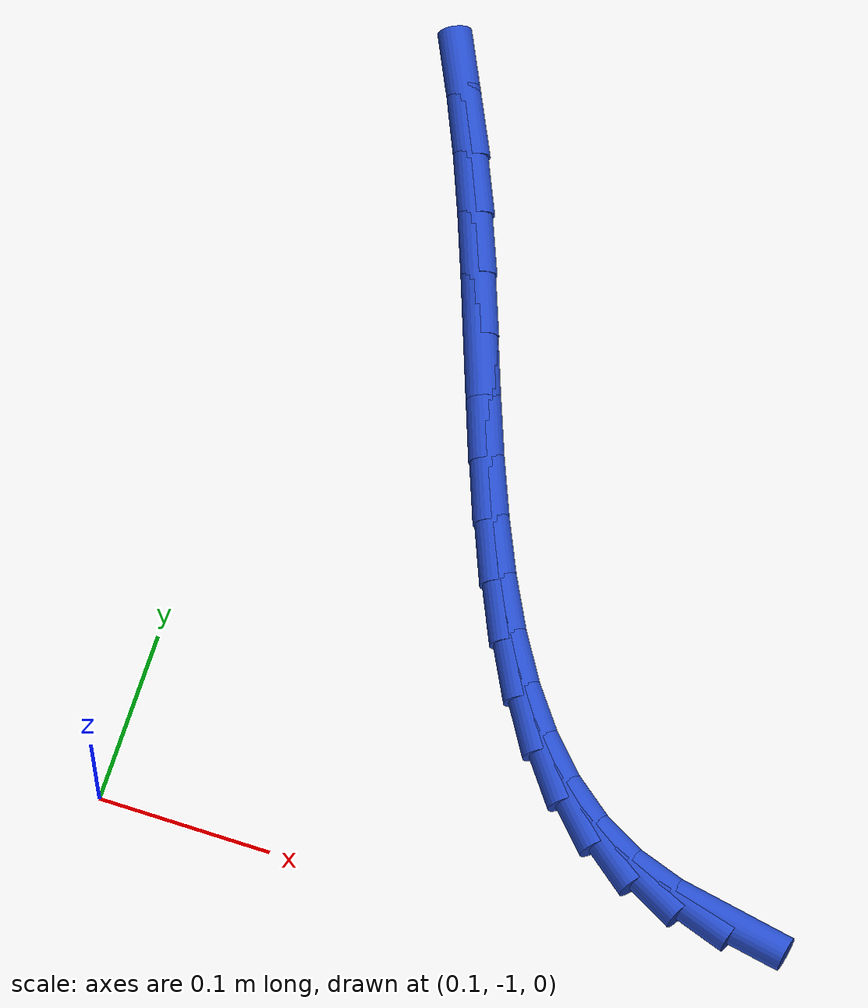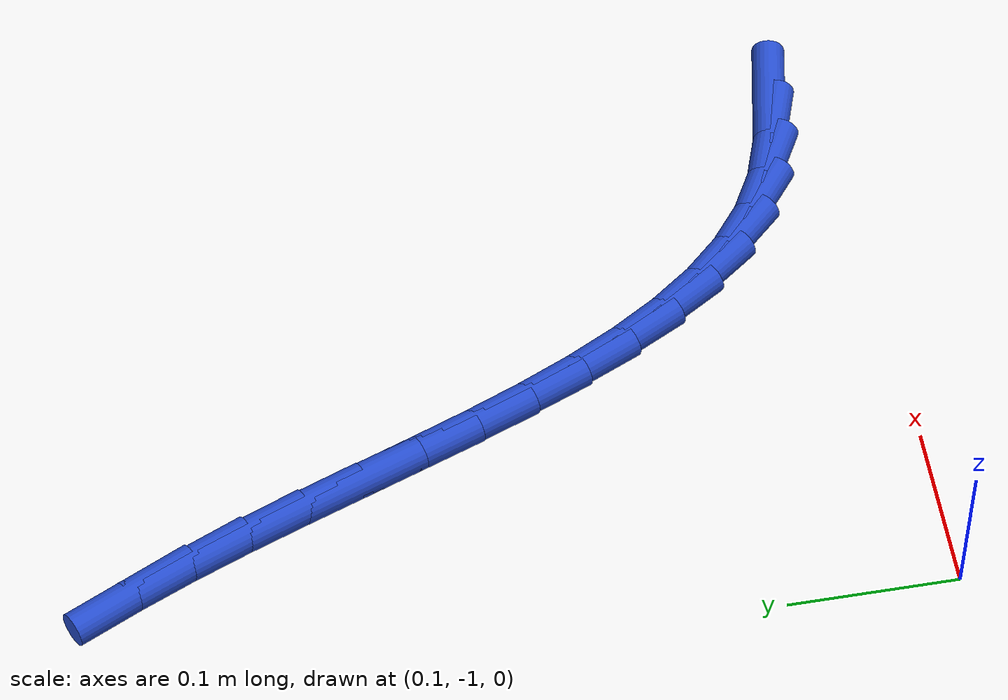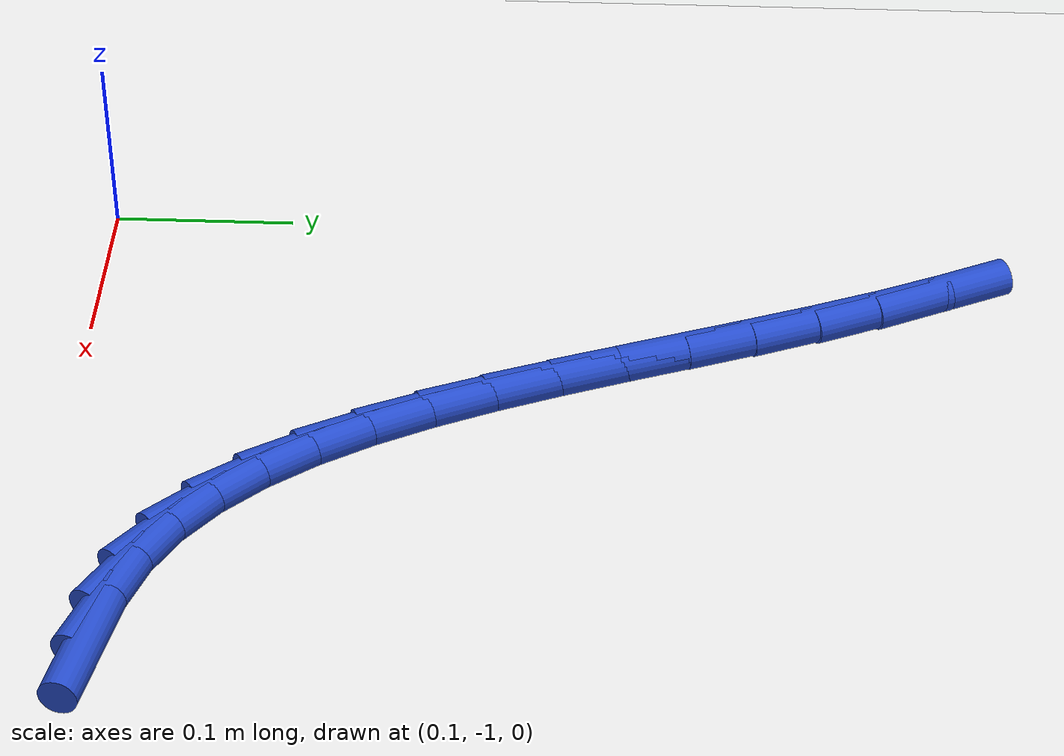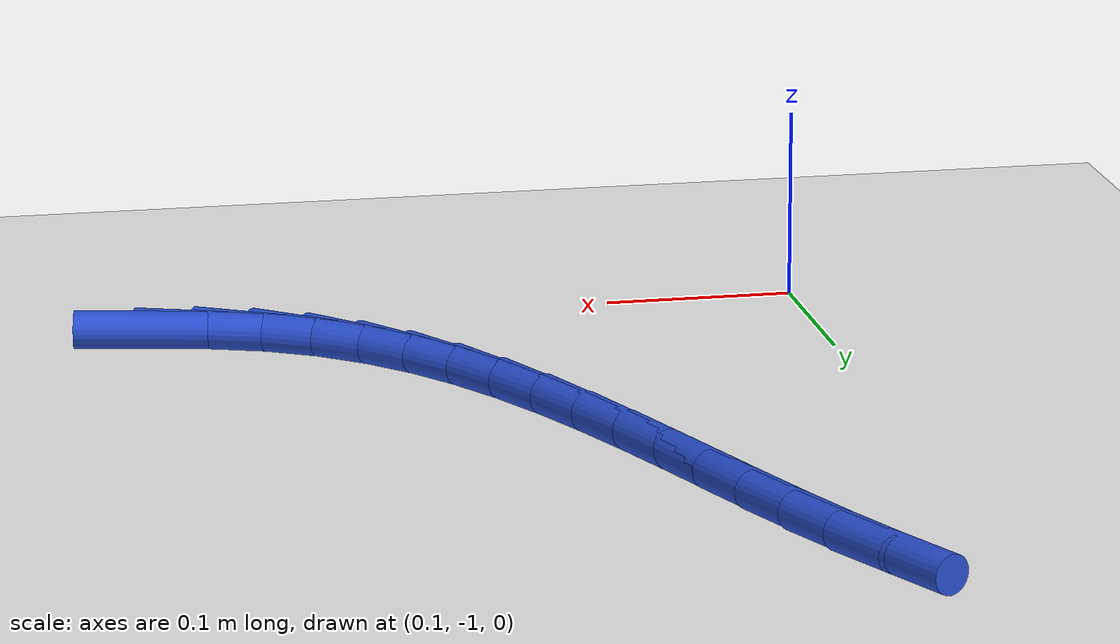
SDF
<sdf version="1.6">
 <world name="default">
  <model name="ground_plane">
   <static>1</static>
   <link name="link">
    <collision name="collision">
     <geometry><plane><normal>0 0 1</normal><size>100 100</size></plane></geometry>
     <surface><friction><ode><mu>100</mu><mu2>50</mu2></ode></friction></surface>
    </collision>
    <visual name="visual">
     <cast_shadows>0</cast_shadows>
     <geometry><plane><normal>0 0 1</normal><size>100 100</size></plane></geometry>
     <material>
      <script><uri>file://media/materials/scripts/gazebo.material</uri><name>Gazebo/WhiteGlow</name></script>
     </material>
    </visual>
   </link>
  </model>
  <model name="line">
   <link name="link_177">
    <pose>0.45102801503278755 -0.9622140786245854 0.01 0 1.57 -0.19061415199039475</pose>
    <collision name="collision">
     <geometry><cylinder><radius>0.01</radius><length>0.08</length></cylinder></geometry>
    </collision>
    <visual name="visual">
     <material>
      <script><name>Gazebo/Blue</name><uri>file://media/materials/scripts/gazebo.material</uri></script>
     </material>
     <geometry><cylinder><radius>0.01</radius><length>0.08</length></cylinder></geometry>
    </visual>
   </link>
   <link name="link_178">
    <pose>0.42082383571029963 -0.9563859774264435 0.01 0 1.57 -0.32907450911765707</pose>
    <collision name="collision">
     <geometry><cylinder><radius>0.01</radius><length>0.08</length></cylinder></geometry>
    </collision>
    <visual name="visual">
     <material>
      <script><name>Gazebo/Blue</name><uri>file://media/materials/scripts/gazebo.material</uri></script>
     </material>
     <geometry><cylinder><radius>0.01</radius><length>0.08</length></cylinder></geometry>
    </visual>
   </link>
   <link name="link_179">
    <pose>0.39287182797921427 -0.9468406149323767 0.01 0 1.57 -0.5002321758506441</pose>
    <collision name="collision">
     <geometry><cylinder><radius>0.01</radius><length>0.08</length></cylinder></geometry>
    </collision>
    <visual name="visual">
     <material>
      <script><name>Gazebo/Blue</name><uri>file://media/materials/scripts/gazebo.material</uri></script>
     </material>
     <geometry><cylinder><radius>0.01</radius><length>0.08</length></cylinder></geometry>
    </visual>
   </link>
   <link name="link_180">
    <pose>0.36747966443870256 -0.9329611568742615 0.01 0 1.57 -0.667224387152814</pose>
    <collision name="collision">
     <geometry><cylinder><radius>0.01</radius><length>0.08</length></cylinder></geometry>
    </collision>
    <visual name="visual">
     <material>
      <script><name>Gazebo/Blue</name><uri>file://media/materials/scripts/gazebo.material</uri></script>
     </material>
     <geometry><cylinder><radius>0.01</radius><length>0.08</length></cylinder></geometry>
    </visual>
   </link>
   <link name="link_181">
    <pose>0.344544183202696 -0.9148938163143729 0.01 0 1.57 -0.8100439118822027</pose>
    <collision name="collision">
     <geometry><cylinder><radius>0.01</radius><length>0.08</length></cylinder></geometry>
    </collision>
    <visual name="visual">
     <material>
      <script><name>Gazebo/Blue</name><uri>file://media/materials/scripts/gazebo.material</uri></script>
     </material>
     <geometry><cylinder><radius>0.01</radius><length>0.08</length></cylinder></geometry>
    </visual>
   </link>
   <link name="link_182">
    <pose>0.32379485444827116 -0.8930956605932898 0.01 0 1.57 -0.9265055830836699</pose>
    <collision name="collision">
     <geometry><cylinder><radius>0.01</radius><length>0.08</length></cylinder></geometry>
    </collision>
    <visual name="visual">
     <material>
      <script><name>Gazebo/Blue</name><uri>file://media/materials/scripts/gazebo.material</uri></script>
     </material>
     <geometry><cylinder><radius>0.01</radius><length>0.08</length></cylinder></geometry>
    </visual>
   </link>
   <link name="link_183">
    <pose>0.3049606583352738 -0.8680246671658898 0.01 0 1.57 -1.018372893677347</pose>
    <collision name="collision">
     <geometry><cylinder><radius>0.01</radius><length>0.08</length></cylinder></geometry>
    </collision>
    <visual name="visual">
     <material>
      <script><name>Gazebo/Blue</name><uri>file://media/materials/scripts/gazebo.material</uri></script>
     </material>
     <geometry><cylinder><radius>0.01</radius><length>0.08</length></cylinder></geometry>
    </visual>
   </link>
   <link name="link_184">
    <pose>0.2877705750235506 -0.840138813487052 0.01 0 1.57 -1.0889174573321128</pose>
    <collision name="collision">
     <geometry><cylinder><radius>0.01</radius><length>0.08</length></cylinder></geometry>
    </collision>
    <visual name="visual">
     <material>
      <script><name>Gazebo/Blue</name><uri>file://media/materials/scripts/gazebo.material</uri></script>
     </material>
     <geometry><cylinder><radius>0.01</radius><length>0.08</length></cylinder></geometry>
    </visual>
   </link>
   <link name="link_185">
    <pose>0.27195358467294706 -0.8098960770116546 0.01 0 1.57 -1.1414627009724467</pose>
    <collision name="collision">
     <geometry><cylinder><radius>0.01</radius><length>0.08</length></cylinder></geometry>
    </collision>
    <visual name="visual">
     <material>
      <script><name>Gazebo/Blue</name><uri>file://media/materials/scripts/gazebo.material</uri></script>
     </material>
     <geometry><cylinder><radius>0.01</radius><length>0.08</length></cylinder></geometry>
    </visual>
   </link>
   <link name="link_186">
    <pose>0.2572386674433093 -0.7777544351945757 0.01 0 1.57 -1.1787707653406223</pose>
    <collision name="collision">
     <geometry><cylinder><radius>0.01</radius><length>0.08</length></cylinder></geometry>
    </collision>
    <visual name="visual">
     <material>
      <script><name>Gazebo/Blue</name><uri>file://media/materials/scripts/gazebo.material</uri></script>
     </material>
     <geometry><cylinder><radius>0.01</radius><length>0.08</length></cylinder></geometry>
    </visual>
   </link>
   <link name="link_187">
    <pose>0.2433548034944833 -0.7441718654906935 0.01 0 1.57 -1.2028817615775742</pose>
    <collision name="collision">
     <geometry><cylinder><radius>0.01</radius><length>0.08</length></cylinder></geometry>
    </collision>
    <visual name="visual">
     <material>
      <script><name>Gazebo/Blue</name><uri>file://media/materials/scripts/gazebo.material</uri></script>
     </material>
     <geometry><cylinder><radius>0.01</radius><length>0.08</length></cylinder></geometry>
    </visual>
   </link>
   <link name="link_188">
    <pose>0.23003097298631495 -0.7096063453548862 0.01 0 1.57 -1.2151302616833226</pose>
    <collision name="collision">
     <geometry><cylinder><radius>0.01</radius><length>0.08</length></cylinder></geometry>
    </collision>
    <visual name="visual">
     <material>
      <script><name>Gazebo/Blue</name><uri>file://media/materials/scripts/gazebo.material</uri></script>
     </material>
     <geometry><cylinder><radius>0.01</radius><length>0.08</length></cylinder></geometry>
    </visual>
   </link>
   <link name="link_189">
    <pose>0.21699615607864994 -0.6745158522420315 0.01 0 1.57 -1.2162024582646684</pose>
    <collision name="collision">
     <geometry><cylinder><radius>0.01</radius><length>0.08</length></cylinder></geometry>
    </collision>
    <visual name="visual">
     <material>
      <script><name>Gazebo/Blue</name><uri>file://media/materials/scripts/gazebo.material</uri></script>
     </material>
     <geometry><cylinder><radius>0.01</radius><length>0.08</length></cylinder></geometry>
    </visual>
   </link>
   <link name="link_190">
    <pose>0.20397933293133486 -0.6393583636070089 0.01 0 1.57 -1.2061778765899034</pose>
    <collision name="collision">
     <geometry><cylinder><radius>0.01</radius><length>0.08</length></cylinder></geometry>
    </collision>
    <visual name="visual">
     <material>
      <script><name>Gazebo/Blue</name><uri>file://media/materials/scripts/gazebo.material</uri></script>
     </material>
     <geometry><cylinder><radius>0.01</radius><length>0.08</length></cylinder></geometry>
    </visual>
   </link>
   <link name="link_191">
    <pose>0.1907094837042154 -0.6045918569046961 0.01 0 1.57 -1.1845368594858634</pose>
    <collision name="collision">
     <geometry><cylinder><radius>0.01</radius><length>0.08</length></cylinder></geometry>
    </collision>
    <visual name="visual">
     <material>
      <script><name>Gazebo/Blue</name><uri>file://media/materials/scripts/gazebo.material</uri></script>
     </material>
     <geometry><cylinder><radius>0.01</radius><length>0.08</length></cylinder></geometry>
    </visual>
   </link>
   <link name="link_192">
    <pose>0.17691558855713757 -0.5706743095899715 0.01 0 1.57 -1.1518674907323094</pose>
    <collision name="collision">
     <geometry><cylinder><radius>0.01</radius><length>0.08</length></cylinder></geometry>
    </collision>
    <visual name="visual">
     <material>
      <script><name>Gazebo/Blue</name><uri>file://media/materials/scripts/gazebo.material</uri></script>
     </material>
     <geometry><cylinder><radius>0.01</radius><length>0.08</length></cylinder></geometry>
    </visual>
   </link>
   <link name="link_193">
    <pose>0.16236930590891727 -0.5380072035152226 0.01 0 1.57 -1.121041557580128</pose>
    <collision name="collision">
     <geometry><cylinder><radius>0.01</radius><length>0.08</length></cylinder></geometry>
    </collision>
    <visual name="visual">
     <material>
      <script><name>Gazebo/Blue</name><uri>file://media/materials/scripts/gazebo.material</uri></script>
     </material>
     <geometry><cylinder><radius>0.01</radius><length>0.08</length></cylinder></geometry>
    </visual>
   </link>
  </model>
 </world>
</sdf>
